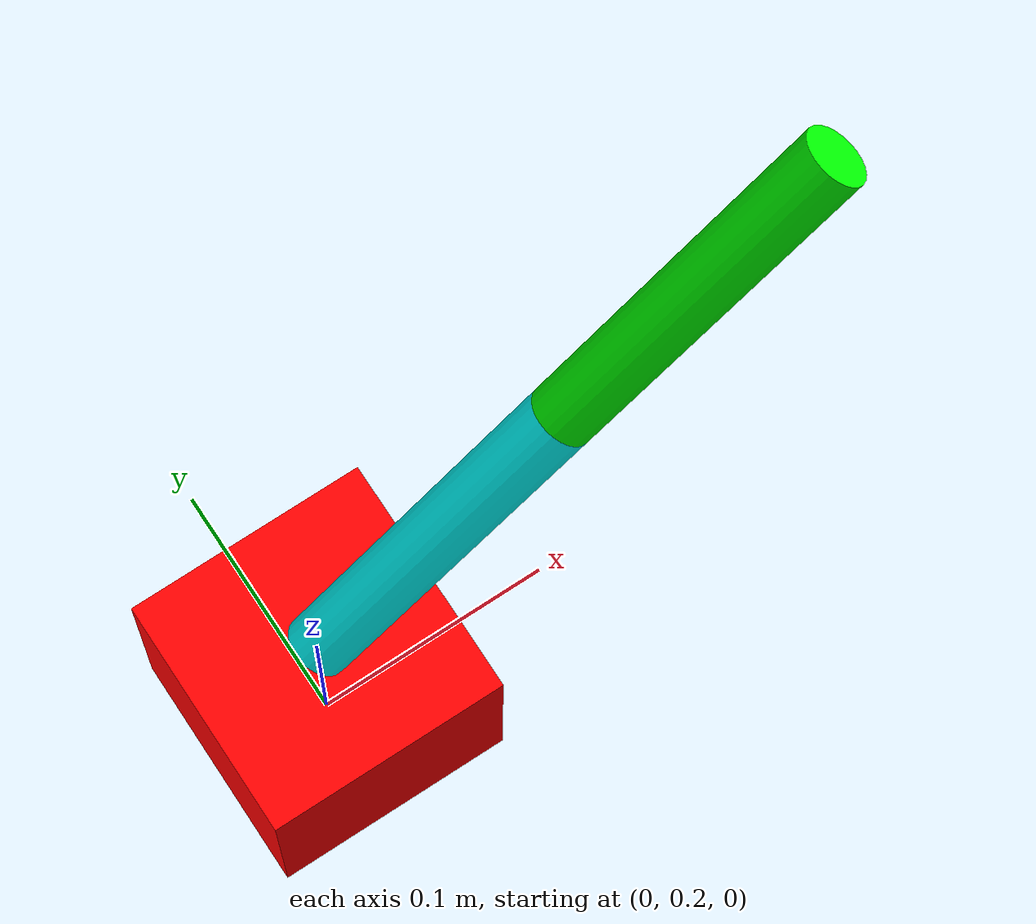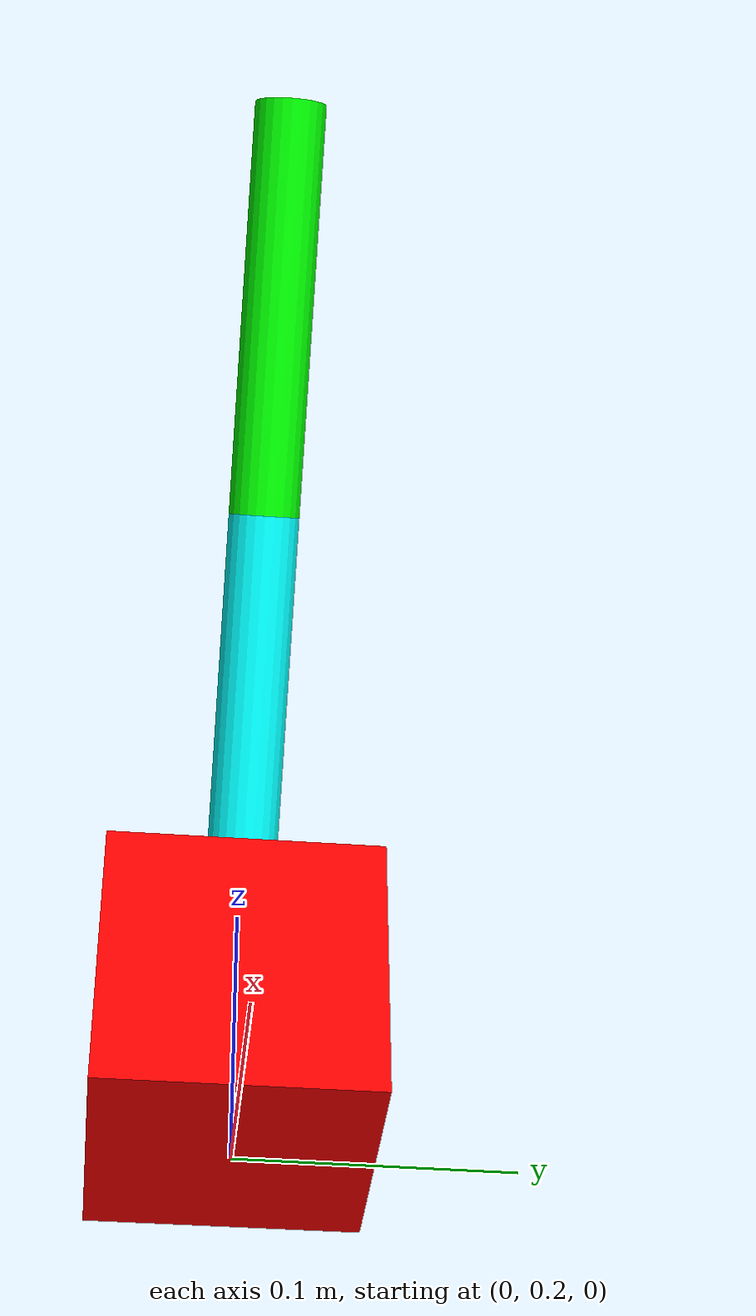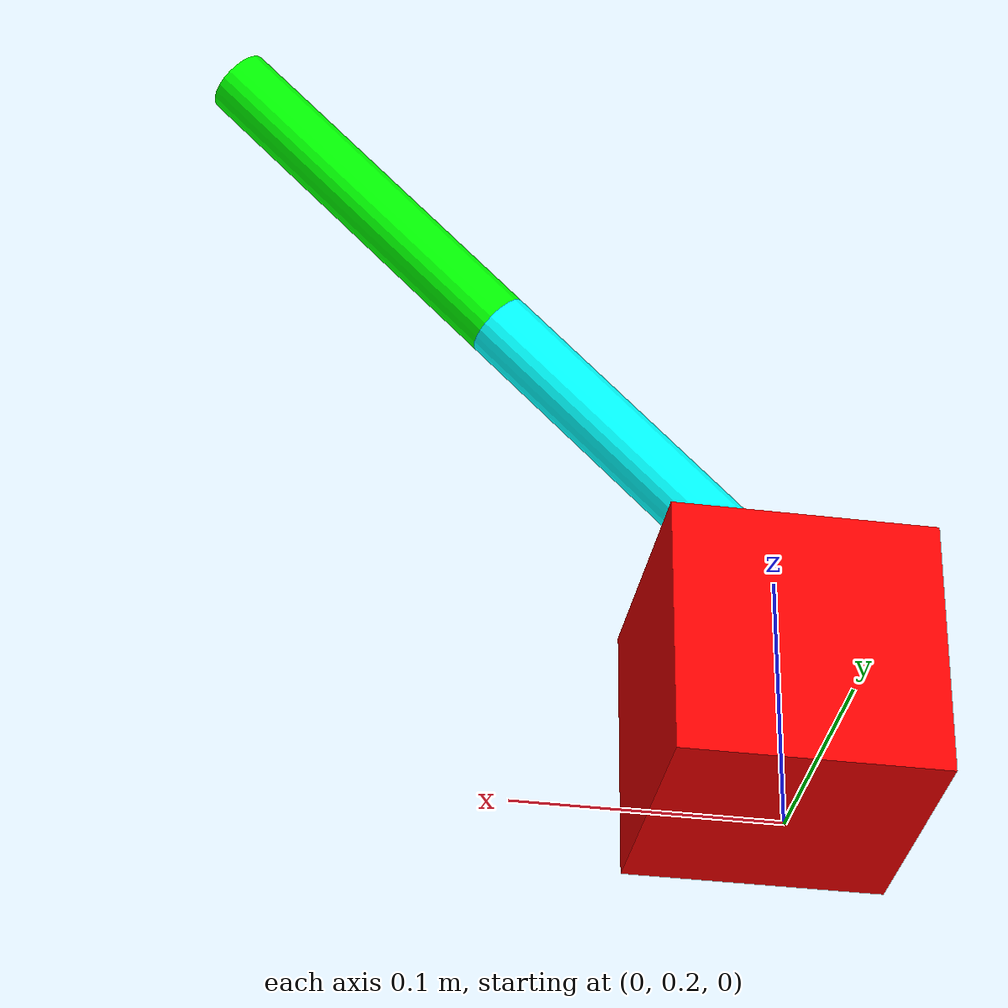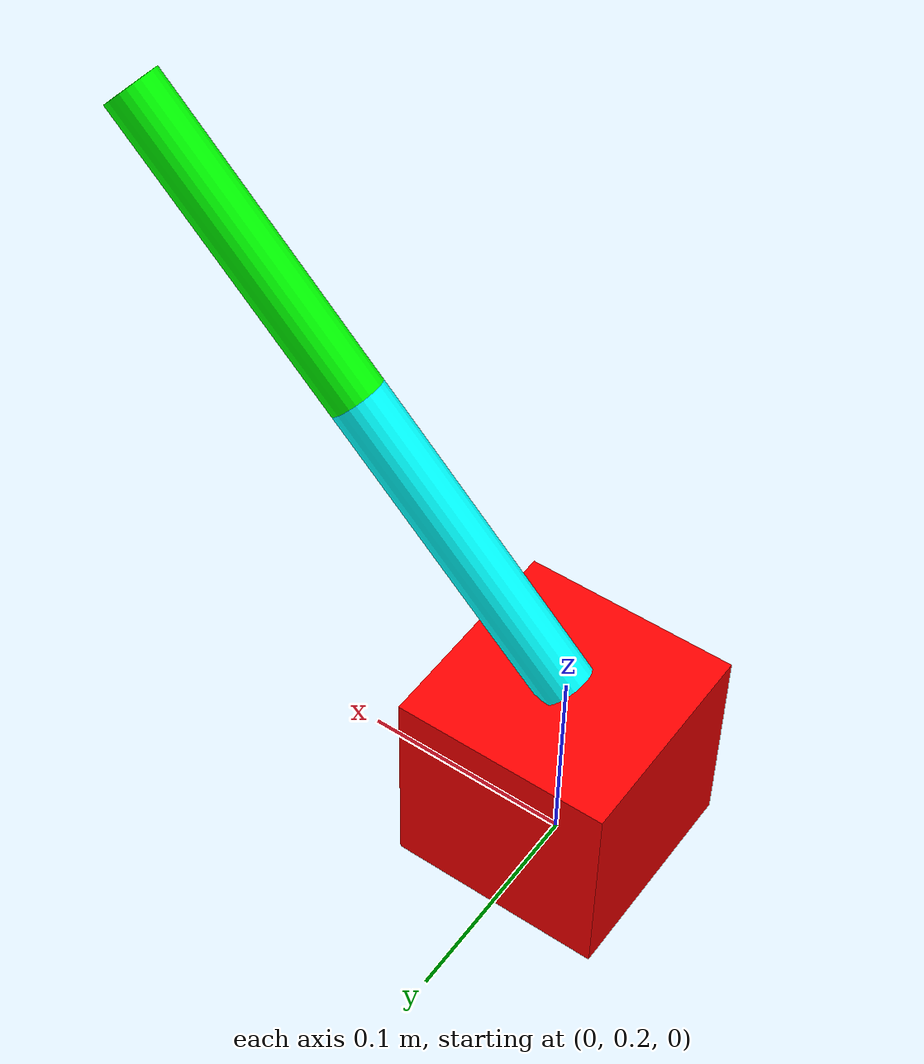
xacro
<?xml version="1.0"?>
<robot xmlns:xacro="http://www.ros.org/wiki/xacro" name="tripteron">
<xacro:include filename="util.xacro"/>

    <link name="world"/>
    <joint name="base" type="fixed">
        <parent link="world"/>
        <child  link="base"/>
        <origin xyz="0 0.2 0" rpy="0 0 0"/>
    </joint>
    <link name="base"/>

    <joint name="right_slider_1" type="prismatic">
        <parent link="base"/>
        <child  link="right_railAttach_one"/>
        <origin xyz="0 0 ${slider_size/2}" rpy="0 0 0"/>
        <axis   xyz="1 0 0"/>
        <limit effort="1000.0" lower="0.0" upper="2.0" velocity="0.5"/>
    </joint>

    <link name="right_railAttach_one">
        <visual>
            <origin xyz="0 0 0" rpy="0 0 0"/>
            <geometry>
                <xacro:Cube size="${slider_size}"/>
            </geometry>
            <material name="red"/>
        </visual>
    </link>

    <joint name="right_theta_1" type="continuous">
        <parent link="right_railAttach_one"/>
        <child  link="right_lower_arm"/>
        <origin xyz="0 0 ${slider_size/2}" rpy="0 ${pi/4} 0"/>
        <axis   xyz="1 0 0"/>
    </joint>

    <link name="right_lower_arm">
        <visual>
            <origin xyz="0 0 ${bottomlimbLng/2}" rpy="0 0 0"/>
            <geometry>
                <cylinder radius="${limbRad}" length="${bottomlimbLng}"/>
            </geometry>
            <material name="cyan"/>
        </visual>
    </link>
    <joint name="right_theta_2" type="continuous">
        <parent link="right_lower_arm"/>
        <child  link="right_upper_arm"/>
        <origin xyz="0 0 ${bottomlimbLng}" rpy="0 0 0"/>
        <axis   xyz="1 0 0"/>
    </joint>

    <link name="right_upper_arm">
        <visual>
            <origin xyz="0 0 ${toplimbLng/2}" rpy="0 0 0"/>
            <geometry>
                <cylinder radius="${limbRad}" length="${toplimbLng}"/>
            </geometry>
            <material name="green"/>
        </visual>
    </link>

</robot>

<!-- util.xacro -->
<robot xmlns:xacro="http://www.ros.org/wiki/xacro" name="tripteron">

    <xacro:property name="limbRad" value="0.013" />
    <xacro:property name="toplimbLng" value="0.15" />
    <xacro:property name="bottomlimbLng" value="0.15" />
    <xacro:property name="pltf_l" value="0.15" />
    <xacro:property name="pltf_w" value="0.15" />
    <xacro:property name="pltf_h" value="0.10" />
    <xacro:property name="slider_size" value="0.10" />
    <xacro:property name="buffer" value="0.0135" />
    <xacro:property name="O_x" value="${(pltf_l/2) - (limbRad + buffer) }" />
    <xacro:property name="O_y" value="${(pltf_w/2) - (limbRad + buffer) }" />
    <xacro:property name="O_z" value="${pltf_h/2}" />

    <!-- Tempary upper and lower limits -->
    <xacro:property name="uLim_front" value="${bottomlimbLng+toplimbLng}"/>
    <xacro:property name="lLim_front" value="-${bottomlimbLng+toplimbLng}"/>
    <xacro:property name="uLim_back" value="${bottomlimbLng+toplimbLng}"/>
    <xacro:property name="lLim_back" value="-${bottomlimbLng+toplimbLng}"/>

    <xacro:macro name="Cube" params="size">
     <box size="${size} ${size} ${size}"/>
    </xacro:macro>
    <!-- *************** Materials / Colors **************** -->
    <material name="white">    <color rgba="1.00 1.00 1.00 1"/>  </material>
    <material name="gray">     <color rgba="0.60 0.60 0.60 1"/>  </material>
    <material name="table">    <color rgba="0.85 0.77 0.77 1"/>  </material>
    <material name="black">    <color rgba="0.00 0.00 0.00 1"/>  </material>

    <material name="red">      <color rgba="1.00 0.00 0.00 1"/>  </material>
    <material name="green">    <color rgba="0.00 1.00 0.00 1"/>  </material>
    <material name="blue">     <color rgba="0.00 0.00 1.00 1"/>  </material>

    <material name="cyan">     <color rgba="0.00 1.00 1.00 1"/>  </material>
    <material name="magenta">  <color rgba="1.00 0.00 1.00 1"/>  </material>
    <material name="yellow">   <color rgba="1.00 1.00 0.00 1"/>  </material>

    <material name="orange">   <color rgba="1.00 0.65 0.00 1"/>  </material>
</robot>
